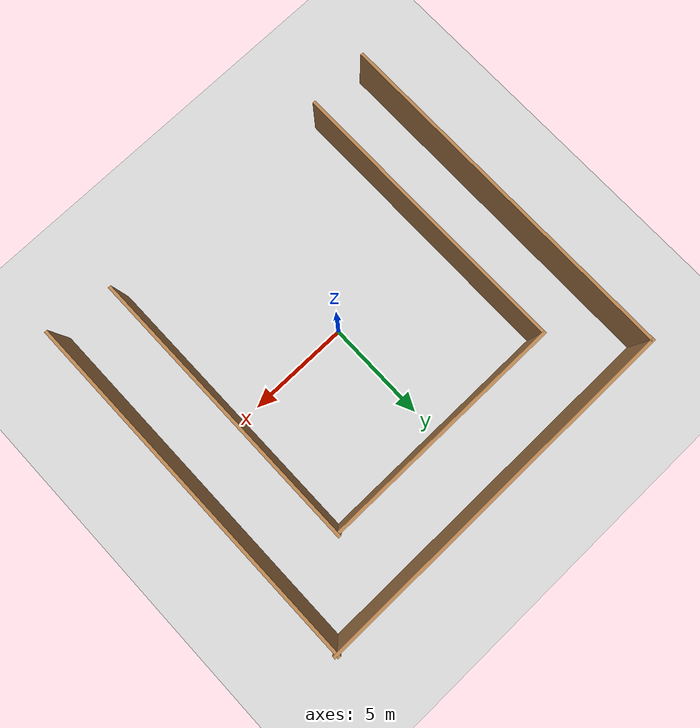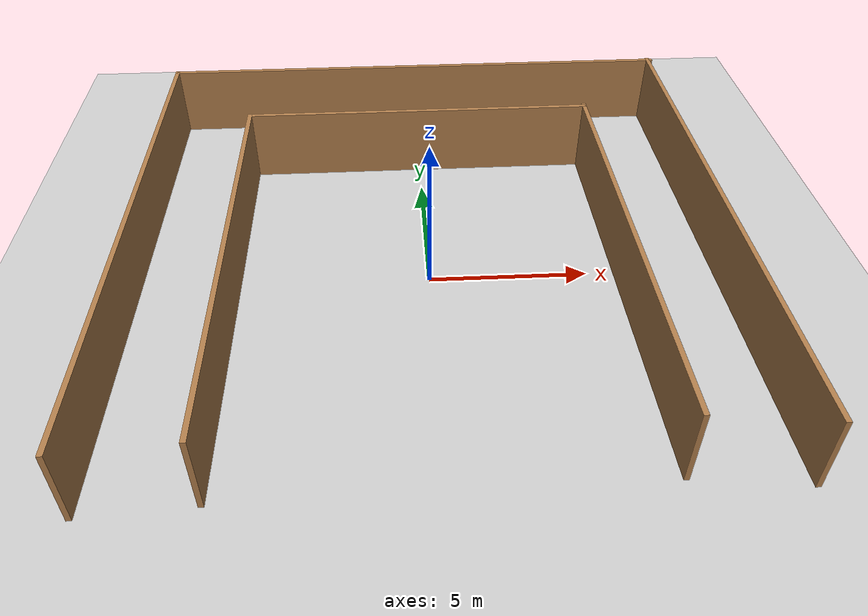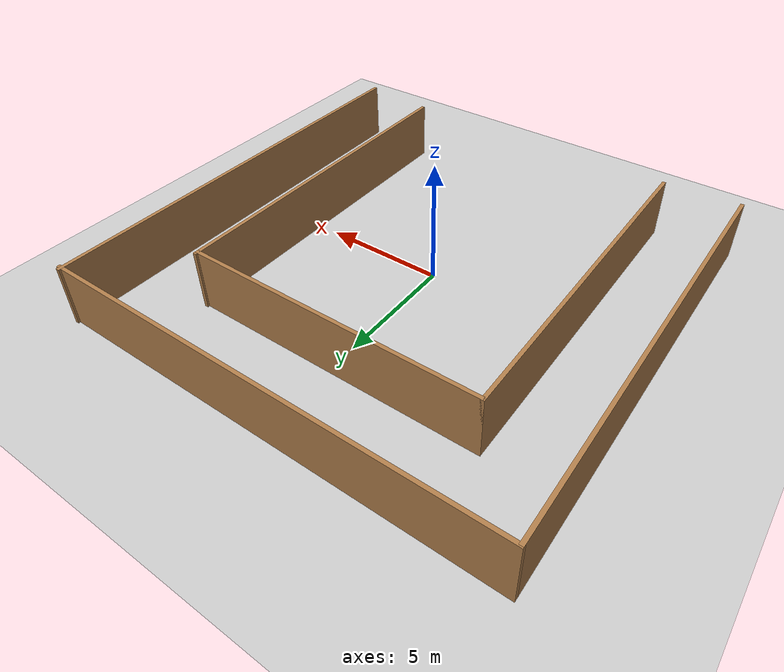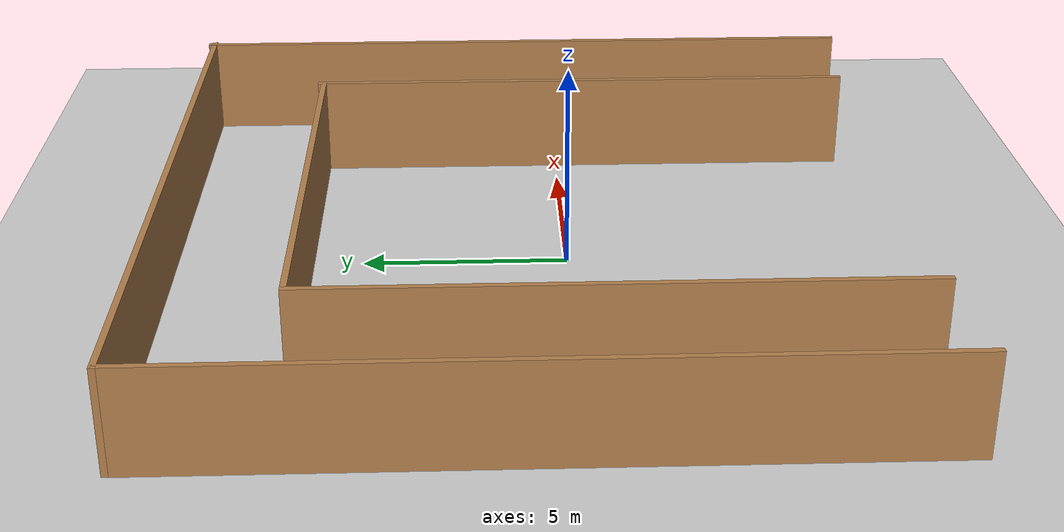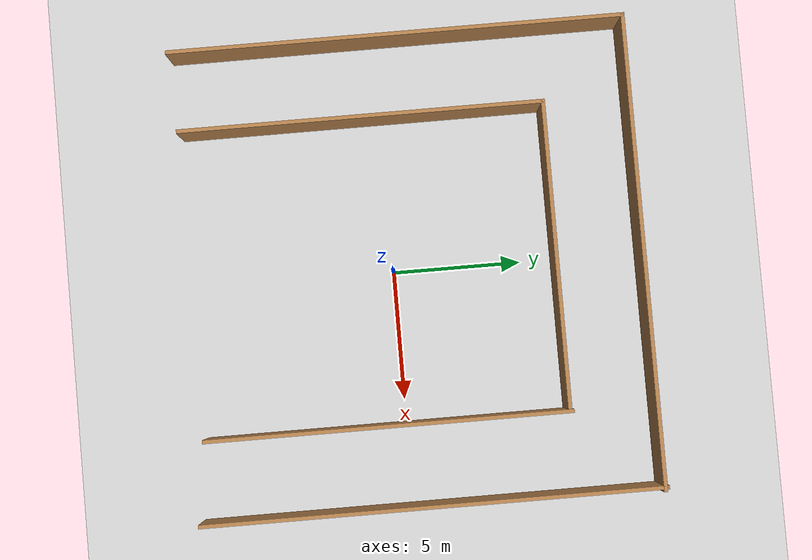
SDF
<?xml version="1.0" ?>
<sdf version="1.4">
  <!-- We use a custom world for the rrbot so that the camera angle is launched correctly -->

  <world name="default">

    <include>
      <uri>model://ground_plane</uri>
      <pose>4 4 0 0 0 0</pose>
    </include>

    <!-- Global light source -->
    <include>
      <uri>model://sun</uri>
    </include>

    <!-- Focus camera on tall pendulum -->
    <gui fullscreen='0'>
      <camera name='user_camera'>
        <pose>4.927360 -4.376610 3.740080 0.000000 0.275643 2.356190</pose>
        <view_controller>orbit</view_controller>
      </camera>
    </gui>

    <model name='Untitled'>
    <pose frame=''>0.069686 0.800102 0 0 -0 0</pose>
    <link name='Wall_10'>
      <collision name='Wall_10_Collision'>
        <geometry>
          <box>
            <size>14.25 0.15 2.5</size>
          </box>
        </geometry>
        <pose frame=''>0 0 1.25 0 -0 0</pose>
      </collision>
      <visual name='Wall_10_Visual'>
        <pose frame=''>0 0 1.25 0 -0 0</pose>
        <geometry>
          <box>
            <size>14.25 0.15 2.5</size>
          </box>
        </geometry>
        <material>
          <script>
            <uri>file://media/materials/scripts/gazebo.material</uri>
            <name>Gazebo/Wood</name>
          </script>
          <ambient>1 1 1 1</ambient>
        </material>
        <meta>
          <layer>0</layer>
        </meta>
      </visual>
      <pose frame=''>-6.08035 -1.56095 0 0 -0 1.5708</pose>
    </link>
    <link name='Wall_11'>
      <collision name='Wall_11_Collision'>
        <geometry>
          <box>
            <size>12.1109 0.15 2.5</size>
          </box>
        </geometry>
        <pose frame=''>0 0 1.25 0 -0 0</pose>
      </collision>
      <visual name='Wall_11_Visual'>
        <pose frame=''>0 0 1.25 0 -0 0</pose>
        <geometry>
          <box>
            <size>12.1109 0.15 2.5</size>
          </box>
        </geometry>
        <material>
          <script>
            <uri>file://media/materials/scripts/gazebo.material</uri>
            <name>Gazebo/Wood</name>
          </script>
          <ambient>1 1 1 1</ambient>
        </material>
        <meta>
          <layer>0</layer>
        </meta>
      </visual>
      <pose frame=''>-0.099899 5.48905 0 0 -0 0</pose>
    </link>
    <link name='Wall_12'>
      <collision name='Wall_12_Collision'>
        <geometry>
          <box>
            <size>14.25 0.15 2.5</size>
          </box>
        </geometry>
        <pose frame=''>0 0 1.25 0 -0 0</pose>
      </collision>
      <visual name='Wall_12_Visual'>
        <pose frame=''>0 0 1.25 0 -0 0</pose>
        <geometry>
          <box>
            <size>14.25 0.15 2.5</size>
          </box>
        </geometry>
        <material>
          <script>
            <uri>file://media/materials/scripts/gazebo.material</uri>
            <name>Gazebo/Wood</name>
          </script>
          <ambient>1 1 1 1</ambient>
        </material>
        <meta>
          <layer>0</layer>
        </meta>
      </visual>
      <pose frame=''>5.88055 -1.4816 0 0 -0 -1.5708</pose>
    </link>
    <link name='Wall_4'>
      <collision name='Wall_4_Collision'>
        <geometry>
          <box>
            <size>17.75 0.15 2.5</size>
          </box>
        </geometry>
        <pose frame=''>0 0 1.25 0 -0 0</pose>
      </collision>
      <visual name='Wall_4_Visual'>
        <pose frame=''>0 0 1.25 0 -0 0</pose>
        <geometry>
          <box>
            <size>17.75 0.15 2.5</size>
          </box>
        </geometry>
        <material>
          <script>
            <uri>file://media/materials/scripts/gazebo.material</uri>
            <name>Gazebo/Wood</name>
          </script>
          <ambient>1 1 1 1</ambient>
        </material>
        <meta>
          <layer>0</layer>
        </meta>
      </visual>
      <pose frame=''>-9.175 -0.00175 0 0 -0 -1.5708</pose>
    </link>
    <link name='Wall_6'>
      <collision name='Wall_6_Collision'>
        <geometry>
          <box>
            <size>18 0.15 2.5</size>
          </box>
        </geometry>
        <pose frame=''>0 0 1.25 0 -0 0</pose>
      </collision>
      <visual name='Wall_6_Visual'>
        <pose frame=''>0 0 1.25 0 -0 0</pose>
        <geometry>
          <box>
            <size>18 0.15 2.5</size>
          </box>
        </geometry>
        <material>
          <script>
            <uri>file://media/materials/scripts/gazebo.material</uri>
            <name>Gazebo/Wood</name>
          </script>
          <ambient>1 1 1 1</ambient>
        </material>
        <meta>
          <layer>0</layer>
        </meta>
      </visual>
      <pose frame=''>9.0755 -0 0 0 -0 1.5708</pose>
    </link>
    <link name='Wall_8'>
      <collision name='Wall_8_Collision'>
        <geometry>
          <box>
            <size>18.5 0.15 2.5</size>
          </box>
        </geometry>
        <pose frame=''>0 0 1.25 0 -0 0</pose>
      </collision>
      <visual name='Wall_8_Visual'>
        <pose frame=''>0 0 1.25 0 -0 0</pose>
        <geometry>
          <box>
            <size>18.5 0.15 2.5</size>
          </box>
        </geometry>
        <material>
          <script>
            <uri>file://media/materials/scripts/gazebo.material</uri>
            <name>Gazebo/Wood</name>
          </script>
          <ambient>1 1 1 1</ambient>
        </material>
        <meta>
          <layer>0</layer>
        </meta>
      </visual>
      <pose frame=''>1e-06 8.84605 0 0 -0 0</pose>
    </link>
    <static>1</static>
  </model>
  </world>
</sdf>
